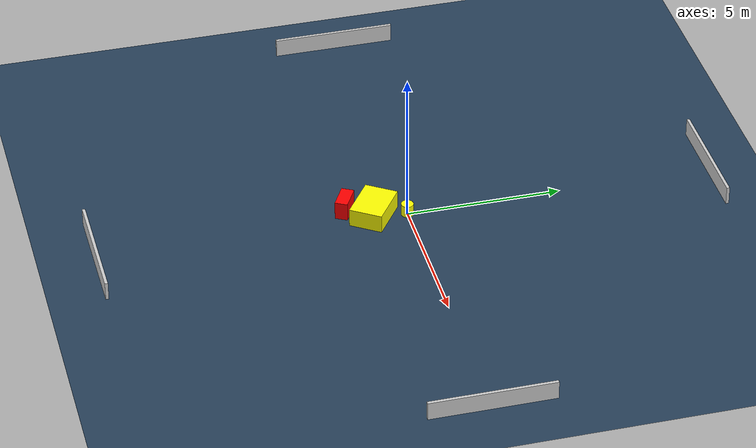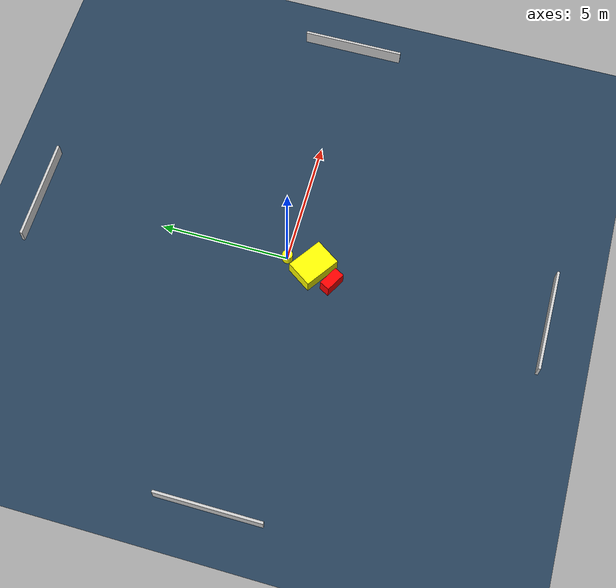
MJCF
<?xml version="1.0" ?>
<mujoco model="generated_environment">
  <option timestep="0.01" integrator="RK4" cone="elliptic"/>
  <default>
    <geom density="1"/>
  </default>
  <asset>
    <texture builtin="gradient" height="3072" name="skybox" rgb1="0.3 0.5 0.7" rgb2="0 0 0" type="skybox" width="512"/>
    <texture builtin="checker" height="300" name="groundplane" rgb1="0.2 0.3 0.4" rgb2="0.1 0.2 0.3" type="2d" width="300"/>
    <material name="groundplane" reflectance="0.2" texrepeat="5 5" texture="groundplane"/>
  </asset>
  <worldbody>
    <light dir="0 0 -1" directional="true" pos="0 0 1.5"/>
    <geom condim="3" friction="0.5 0.005 0.001" material="groundplane" name="floor" pos="0 0 0" size="0 0 0.05" type="plane"/>
    <body name="walls">
      <geom name="wall_1" condim="4" pos="-10.0 0.0 0.3" rgba="0.800000011920929 0.800000011920929 0.800000011920929 1.0" size="0.05 2.0 0.3" type="box"/>
      <geom name="wall_2" condim="4" pos="10.0 0.0 0.3" rgba="0.800000011920929 0.800000011920929 0.800000011920929 1.0" size="0.05 2.0 0.3" type="box"/>
      <geom name="wall_3" condim="4" pos="0.0 -10.0 0.3" rgba="0.800000011920929 0.800000011920929 0.800000011920929 1.0" size="2.0 0.05 0.3" type="box"/>
      <geom name="wall_4" condim="4" pos="0.0 10.0 0.3" rgba="0.800000011920929 0.800000011920929 0.800000011920929 1.0" size="2.0 0.05 0.3" type="box"/>
    </body>
    <body name="robot">
      <joint name="joint_x" type="slide" pos="0 0 0" axis="1 0 0"/>
      <joint name="joint_y" type="slide" pos="0 0 0" axis="0 1 0"/>
      <geom name="robot" type="cylinder" pos="0.0 0.0 0.2" size="0.2 0.2 0.0" mass="5.0" friction="1.0 0.005 0.0001" condim="4" rgba="1.0 1.0 0.0 1.0"/>
    </body>
    <body name="obstacle_1_movable">
      <geom name="obstacle_1_movable" condim="4" pos="-0.1568222156333113 -1.0615375222129426 0.3" euler="0 0 145.51831532515095" friction="0.0 0.005 0.001" rgba="1.0 1.0 0.0 1.0" size="0.7322388704229399 0.5424801514488746 0.3" type="box" mass="0.1"/>
      <joint type="free"/>
    </body>
    <body name="obstacle_2_static">
      <geom name="obstacle_2_static" condim="4" pos="-0.6035995850933568 -1.895784904417783 0.3" euler="0 0 151.2354123977734" friction="0.0 0.005 0.001" rgba="1.0 0.0 0.0 1.0" size="0.41235496079963907 0.2074192895459761 0.3" type="box"/>
    </body>
  </worldbody>
  <actuator>
    <motor name="actuator_x" joint="joint_x" gear="1" ctrlrange="-1 1"/>
    <motor name="actuator_y" joint="joint_y" gear="1" ctrlrange="-1 1"/>
  </actuator>
</mujoco>
